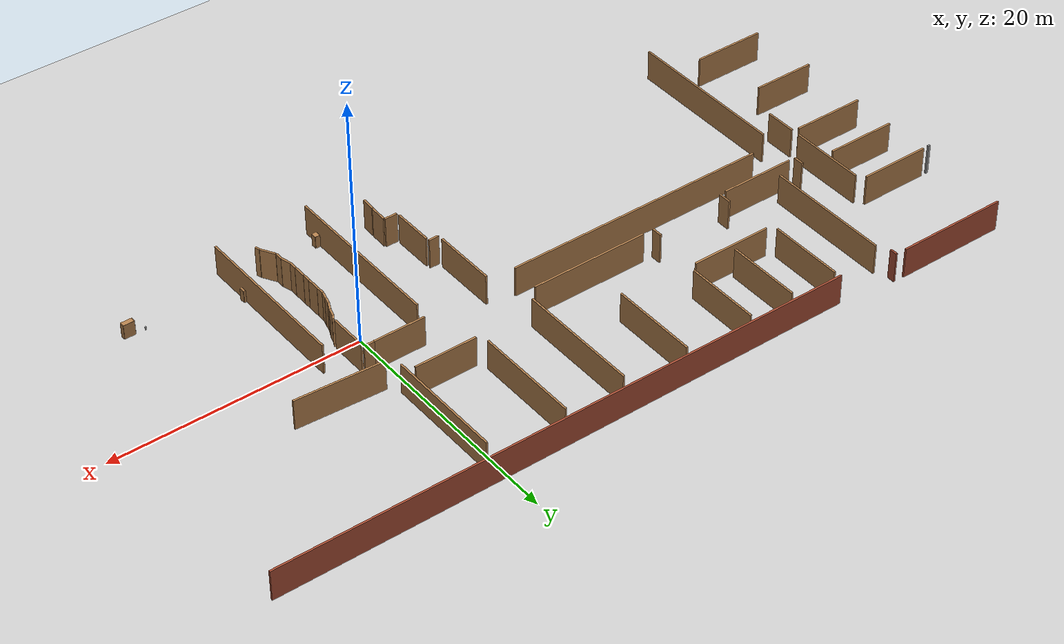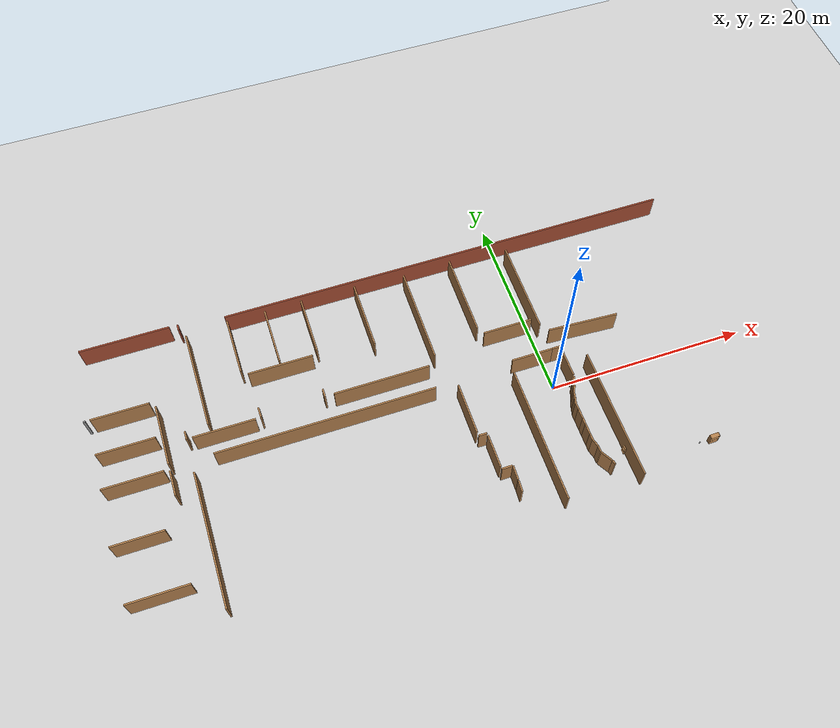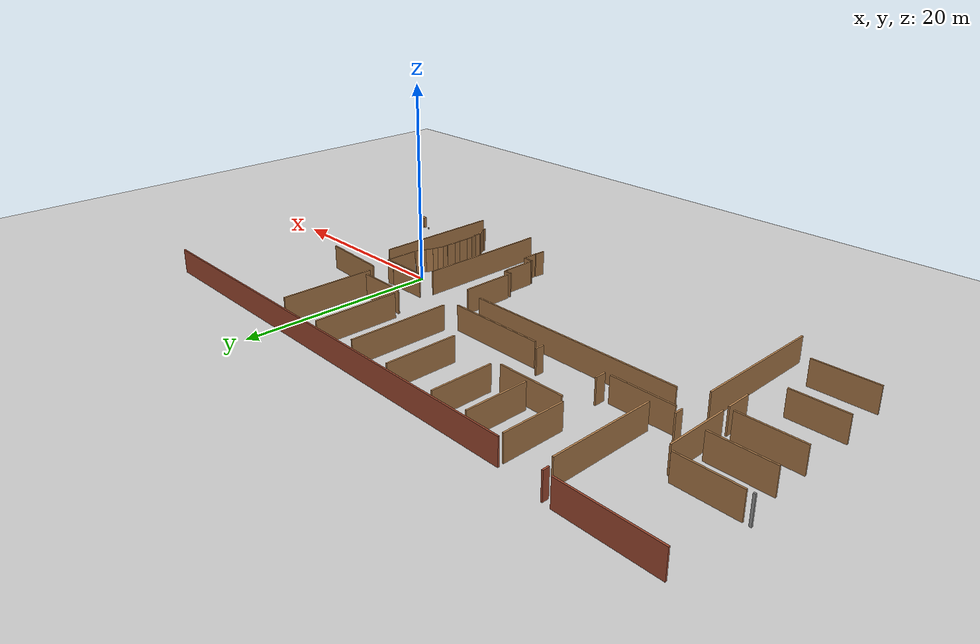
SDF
<sdf version="1.6">
 <world name="default">
  <model name="ground_plane">
   <static>1</static>
   <link name="link">
    <collision name="collision">
     <geometry><plane><normal>0 0 1</normal><size>100 100</size></plane></geometry>
     <surface><friction><ode><mu>100</mu><mu2>50</mu2></ode></friction></surface>
    </collision>
    <visual name="visual">
     <cast_shadows>0</cast_shadows>
     <geometry><plane><normal>0 0 1</normal><size>100 100</size></plane></geometry>
     <material>
      <script><uri>file://media/materials/scripts/gazebo.material</uri><name>Gazebo/Grey</name></script>
     </material>
    </visual>
   </link>
  </model>
  <model name="floorPlan">
   <pose>6.7155 -5.3556 0 0 -0 0</pose>
   <link name="Wall_101">
    <collision name="Wall_101_Collision">
     <geometry><box><size>8.95 0.15 2.5</size></box></geometry>
     <pose>0 0 1.25 0 -0 0</pose>
    </collision>
    <visual name="Wall_101_Visual">
     <pose>0 0 1.25 0 -0 0</pose>
     <geometry><box><size>8.95 0.15 2.5</size></box></geometry>
     <material>
      <script><uri>file://media/materials/scripts/gazebo.material</uri><name>Gazebo/Bricks</name></script>
      <ambient>1 1 1 1</ambient>
     </material>
     <meta><layer>0</layer></meta>
    </visual>
    <pose>-45.3755 22.7356 0 0 -0 0</pose>
   </link>
   <link name="Wall_102">
    <collision name="Wall_102_Collision">
     <geometry><box><size>0.62 0.15 2.5</size></box></geometry>
     <pose>0 0 1.25 0 -0 0</pose>
    </collision>
    <visual name="Wall_102_Visual">
     <pose>0 0 1.25 0 -0 0</pose>
     <geometry><box><size>0.62 0.15 2.5</size></box></geometry>
     <material>
      <script><uri>file://media/materials/scripts/gazebo.material</uri><name>Gazebo/Bricks</name></script>
      <ambient>1 1 1 1</ambient>
     </material>
     <meta><layer>0</layer></meta>
    </visual>
    <pose>-40.0755 22.4356 0 0 0 -1.5708</pose>
   </link>
   <link name="Wall_103">
    <collision name="Wall_103_Collision">
     <geometry><box><size>46.86 0.15 2.5</size></box></geometry>
     <pose>0 0 1.25 0 -0 0</pose>
    </collision>
    <visual name="Wall_103_Visual">
     <pose>0 0 1.25 0 -0 0</pose>
     <geometry><box><size>46.86 0.15 2.5</size></box></geometry>
     <material>
      <script><uri>file://media/materials/scripts/gazebo.material</uri><name>Gazebo/Bricks</name></script>
      <ambient>1 1 1 1</ambient>
     </material>
     <meta><layer>0</layer></meta>
    </visual>
    <pose>-12.0255 22.1356 0 0 -0 0</pose>
   </link>
   <link name="Wall_161">
    <collision name="Wall_161_Collision">
     <geometry><box><size>4.17 0.15 2.5</size></box></geometry>
     <pose>0 0 1.25 0 -0 0</pose>
    </collision>
    <visual name="Wall_161_Visual">
     <pose>0 0 1.25 0 -0 0</pose>
     <geometry><box><size>4.17 0.15 2.5</size></box></geometry>
     <material>
      <script><uri>file://media/materials/scripts/gazebo.material</uri><name>Gazebo/Wood</name></script>
      <ambient>1 1 1 1</ambient>
     </material>
     <meta><layer>0</layer></meta>
    </visual>
    <pose>-7.97942 8.30014 0 0 -0 3.14159</pose>
   </link>
   <link name="Wall_162">
    <collision name="Wall_162_Collision">
     <geometry><box><size>13.74 0.15 2.5</size></box></geometry>
     <pose>0 0 1.25 0 -0 0</pose>
    </collision>
    <visual name="Wall_162_Visual">
     <pose>0 0 1.25 0 -0 0</pose>
     <geometry><box><size>13.74 0.15 2.5</size></box></geometry>
     <material>
      <script><uri>file://media/materials/scripts/gazebo.material</uri><name>Gazebo/Wood</name></script>
      <ambient>1 1 1 1</ambient>
     </material>
     <meta><layer>0</layer></meta>
    </visual>
    <pose>-10.4044 0.125141 0 0 0 -1.5708</pose>
   </link>
   <link name="Wall_165">
    <collision name="Wall_165_Collision">
     <geometry><box><size>0.42 0.15 2.5</size></box></geometry>
     <pose>0 0 1.25 0 -0 0</pose>
    </collision>
    <visual name="Wall_165_Visual">
     <pose>0 0 1.25 0 -0 0</pose>
     <geometry><box><size>0.42 0.15 2.5</size></box></geometry>
     <material>
      <script><uri>file://media/materials/scripts/gazebo.material</uri><name>Gazebo/Wood</name></script>
      <ambient>1 1 1 1</ambient>
     </material>
     <meta><layer>0</layer></meta>
    </visual>
    <pose>-5.09971 -4.78082 0 0 -0 1.8326</pose>
   </link>
   <link name="Wall_166">
    <collision name="Wall_166_Collision">
     <geometry><box><size>1.25 0.15 2.5</size></box></geometry>
     <pose>0 0 1.25 0 -0 0</pose>
    </collision>
    <visual name="Wall_166_Visual">
     <pose>0 0 1.25 0 -0 0</pose>
     <geometry><box><size>1.25 0.15 2.5</size></box></geometry>
     <material>
      <script><uri>file://media/materials/scripts/gazebo.material</uri><name>Gazebo/Wood</name></script>
      <ambient>1 1 1 1</ambient>
     </material>
     <meta><layer>0</layer></meta>
    </visual>
    <pose>-5.4825 -4.02722 0 0 -0 2.0944</pose>
   </link>
   <link name="Wall_167">
    <collision name="Wall_167_Collision">
     <geometry><box><size>0.62 0.15 2.5</size></box></geometry>
     <pose>0 0 1.25 0 -0 0</pose>
    </collision>
    <visual name="Wall_167_Visual">
     <pose>0 0 1.25 0 -0 0</pose>
     <geometry><box><size>0.62 0.15 2.5</size></box></geometry>
     <material>
      <script><uri>file://media/materials/scripts/gazebo.material</uri><name>Gazebo/Wood</name></script>
      <ambient>1 1 1 1</ambient>
     </material>
     <meta><layer>0</layer></meta>
    </visual>
    <pose>-5.82 -3.14265 0 0 -0 1.5708</pose>
   </link>
   <link name="Wall_168">
    <collision name="Wall_168_Collision">
     <geometry><box><size>0.83 0.15 2.5</size></box></geometry>
     <pose>0 0 1.25 0 -0 0</pose>
    </collision>
    <visual name="Wall_168_Visual">
     <pose>0 0 1.25 0 -0 0</pose>
     <geometry><box><size>0.83 0.15 2.5</size></box></geometry>
     <material>
      <script><uri>file://media/materials/scripts/gazebo.material</uri><name>Gazebo/Wood</name></script>
      <ambient>1 1 1 1</ambient>
     </material>
     <meta><layer>0</layer></meta>
    </visual>
    <pose>-5.93 -2.43213 0 0 -0 1.8326</pose>
   </link>
   <link name="Wall_169">
    <collision name="Wall_169_Collision">
     <geometry><box><size>0.62 0.15 2.5</size></box></geometry>
     <pose>0 0 1.25 0 -0 0</pose>
    </collision>
    <visual name="Wall_169_Visual">
     <pose>0 0 1.25 0 -0 0</pose>
     <geometry><box><size>0.62 0.15 2.5</size></box></geometry>
     <material>
      <script><uri>file://media/materials/scripts/gazebo.material</uri><name>Gazebo/Wood</name></script>
      <ambient>1 1 1 1</ambient>
     </material>
     <meta><layer>0</layer></meta>
    </visual>
    <pose>-6.04 -1.72161 0 0 -0 1.5708</pose>
   </link>
   <link name="Wall_170">
    <collision name="Wall_170_Collision">
     <geometry><box><size>1.04 0.15 2.5</size></box></geometry>
     <pose>0 0 1.25 0 -0 0</pose>
    </collision>
    <visual name="Wall_170_Visual">
     <pose>0 0 1.25 0 -0 0</pose>
     <geometry><box><size>1.04 0.15 2.5</size></box></geometry>
     <material>
      <script><uri>file://media/materials/scripts/gazebo.material</uri><name>Gazebo/Wood</name></script>
      <ambient>1 1 1 1</ambient>
     </material>
     <meta><layer>0</layer></meta>
    </visual>
    <pose>-6.04 -0.871614 0 0 -0 1.5708</pose>
   </link>
   <link name="Wall_171">
    <collision name="Wall_171_Collision">
     <geometry><box><size>0.62 0.15 2.5</size></box></geometry>
     <pose>0 0 1.25 0 -0 0</pose>
    </collision>
    <visual name="Wall_171_Visual">
     <pose>0 0 1.25 0 -0 0</pose>
     <geometry><box><size>0.62 0.15 2.5</size></box></geometry>
     <material>
      <script><uri>file://media/materials/scripts/gazebo.material</uri><name>Gazebo/Wood</name></script>
      <ambient>1 1 1 1</ambient>
     </material>
     <meta><layer>0</layer></meta>
    </visual>
    <pose>-6.04 -0.021614 0 0 -0 1.5708</pose>
   </link>
   <link name="Wall_172">
    <collision name="Wall_172_Collision">
     <geometry><box><size>1.04 0.15 2.5</size></box></geometry>
     <pose>0 0 1.25 0 -0 0</pose>
    </collision>
    <visual name="Wall_172_Visual">
     <pose>0 0 1.25 0 -0 0</pose>
     <geometry><box><size>1.04 0.15 2.5</size></box></geometry>
     <material>
      <script><uri>file://media/materials/scripts/gazebo.material</uri><name>Gazebo/Wood</name></script>
      <ambient>1 1 1 1</ambient>
     </material>
     <meta><layer>0</layer></meta>
    </visual>
    <pose>-6.04 0.828386 0 0 -0 1.5708</pose>
   </link>
   <link name="Wall_173">
    <collision name="Wall_173_Collision">
     <geometry><box><size>0.62 0.15 2.5</size></box></geometry>
     <pose>0 0 1.25 0 -0 0</pose>
    </collision>
    <visual name="Wall_173_Visual">
     <pose>0 0 1.25 0 -0 0</pose>
     <geometry><box><size>0.62 0.15 2.5</size></box></geometry>
     <material>
      <script><uri>file://media/materials/scripts/gazebo.material</uri><name>Gazebo/Wood</name></script>
      <ambient>1 1 1 1</ambient>
     </material>
     <meta><layer>0</layer></meta>
    </visual>
    <pose>-6.04 1.67839 0 0 -0 1.5708</pose>
   </link>
   <link name="Wall_174">
    <collision name="Wall_174_Collision">
     <geometry><box><size>0.62 0.15 2.5</size></box></geometry>
     <pose>0 0 1.25 0 -0 0</pose>
    </collision>
    <visual name="Wall_174_Visual">
     <pose>0 0 1.25 0 -0 0</pose>
     <geometry><box><size>0.62 0.15 2.5</size></box></geometry>
     <material>
      <script><uri>file://media/materials/scripts/gazebo.material</uri><name>Gazebo/Wood</name></script>
      <ambient>1 1 1 1</ambient>
     </material>
     <meta><layer>0</layer></meta>
    </visual>
    <pose>-5.96235 2.26816 0 0 -0 1.309</pose>
   </link>
   <link name="Wall_175">
    <collision name="Wall_175_Collision">
     <geometry><box><size>0.57 0.15 2.5</size></box></geometry>
     <pose>0 0 1.25 0 -0 0</pose>
    </collision>
    <visual name="Wall_175_Visual">
     <pose>0 0 1.25 0 -0 0</pose>
     <geometry><box><size>0.57 0.15 2.5</size></box></geometry>
     <material>
      <script><uri>file://media/materials/scripts/gazebo.material</uri><name>Gazebo/Wood</name></script>
      <ambient>1 1 1 1</ambient>
     </material>
     <meta><layer>0</layer></meta>
    </visual>
    <pose>-5.82391 2.82035 0 0 -0 1.34312</pose>
   </link>
   <link name="Wall_176">
    <collision name="Wall_176_Collision">
     <geometry><box><size>0.73 0.15 2.5</size></box></geometry>
     <pose>0 0 1.25 0 -0 0</pose>
    </collision>
    <visual name="Wall_176_Visual">
     <pose>0 0 1.25 0 -0 0</pose>
     <geometry><box><size>0.73 0.15 2.5</size></box></geometry>
     <material>
      <script><uri>file://media/materials/scripts/gazebo.material</uri><name>Gazebo/Wood</name></script>
      <ambient>1 1 1 1</ambient>
     </material>
     <meta><layer>0</layer></meta>
    </visual>
    <pose>-5.60659 3.41318 0 0 -0 1.12842</pose>
   </link>
   <link name="Wall_177">
    <collision name="Wall_177_Collision">
     <geometry><box><size>0.7 0.15 2.5</size></box></geometry>
     <pose>0 0 1.25 0 -0 0</pose>
    </collision>
    <visual name="Wall_177_Visual">
     <pose>0 0 1.25 0 -0 0</pose>
     <geometry><box><size>0.7 0.15 2.5</size></box></geometry>
     <material>
      <script><uri>file://media/materials/scripts/gazebo.material</uri><name>Gazebo/Wood</name></script>
      <ambient>1 1 1 1</ambient>
     </material>
     <meta><layer>0</layer></meta>
    </visual>
    <pose>-5.34572 4.07405 0 0 -0 1.26492</pose>
   </link>
   <link name="Wall_178">
    <collision name="Wall_178_Collision">
     <geometry><box><size>0.42 0.15 2.5</size></box></geometry>
     <pose>0 0 1.25 0 -0 0</pose>
    </collision>
    <visual name="Wall_178_Visual">
     <pose>0 0 1.25 0 -0 0</pose>
     <geometry><box><size>0.42 0.15 2.5</size></box></geometry>
     <material>
      <script><uri>file://media/materials/scripts/gazebo.material</uri><name>Gazebo/Wood</name></script>
      <ambient>1 1 1 1</ambient>
     </material>
     <meta><layer>0</layer></meta>
    </visual>
    <pose>-5.15387 4.55604 0 0 -0 1.0472</pose>
   </link>
   <link name="Wall_179">
    <collision name="Wall_179_Collision">
     <geometry><box><size>3.12 0.15 2.5</size></box></geometry>
     <pose>0 0 1.25 0 -0 0</pose>
    </collision>
    <visual name="Wall_179_Visual">
     <pose>0 0 1.25 0 -0 0</pose>
     <geometry><box><size>3.12 0.15 2.5</size></box></geometry>
     <material>
      <script><uri>file://media/materials/scripts/gazebo.material</uri><name>Gazebo/Wood</name></script>
      <ambient>1 1 1 1</ambient>
     </material>
     <meta><layer>0</layer></meta>
    </visual>
    <pose>-5.06637 6.5076 0 0 -0 1.5708</pose>
   </link>
   <link name="Wall_180">
    <collision name="Wall_180_Collision">
     <geometry><box><size>0.83 0.15 2.5</size></box></geometry>
     <pose>0 0 1.25 0 -0 0</pose>
    </collision>
    <visual name="Wall_180_Visual">
     <pose>0 0 1.25 0 -0 0</pose>
     <geometry><box><size>0.83 0.15 2.5</size></box></geometry>
     <material>
      <script><uri>file://media/materials/scripts/gazebo.material</uri><name>Gazebo/Wood</name></script>
      <ambient>1 1 1 1</ambient>
     </material>
     <meta><layer>0</layer></meta>
    </visual>
    <pose>-5.49137 8.3076 0 0 -0 3.14159</pose>
   </link>
   <link name="Wall_184">
    <collision name="Wall_184_Collision">
     <geometry><box><size>13.33 0.15 2.5</size></box></geometry>
     <pose>0 0 1.25 0 -0 0</pose>
    </collision>
    <visual name="Wall_184_Visual">
     <pose>0 0 1.25 0 -0 0</pose>
     <geometry><box><size>13.33 0.15 2.5</size></box></geometry>
     <material>
      <script><uri>file://media/materials/scripts/gazebo.material</uri><name>Gazebo/Wood</name></script>
      <ambient>1 1 1 1</ambient>
     </material>
     <meta><layer>0</layer></meta>
    </visual>
    <pose>-41.7957 -0.087903 0 0 -0 1.5708</pose>
   </link>
   <link name="Wall_185">
    <collision name="Wall_185_Collision">
     <geometry><box><size>21.66 0.15 2.5</size></box></geometry>
     <pose>0 0 1.25 0 -0 0</pose>
    </collision>
    <visual name="Wall_185_Visual">
     <pose>0 0 1.25 0 -0 0</pose>
     <geometry><box><size>21.66 0.15 2.5</size></box></geometry>
     <material>
      <script><uri>file://media/materials/scripts/gazebo.material</uri><name>Gazebo/Wood</name></script>
      <ambient>1 1 1 1</ambient>
     </material>
     <meta><layer>0</layer></meta>
    </visual>
    <pose>-28.8707 7.8371 0 0 -0 0</pose>
   </link>
   <link name="Wall_186">
    <collision name="Wall_186_Collision">
     <geometry><box><size>5.21 0.15 2.5</size></box></geometry>
     <pose>0 0 1.25 0 -0 0</pose>
    </collision>
    <visual name="Wall_186_Visual">
     <pose>0 0 1.25 0 -0 0</pose>
     <geometry><box><size>5.21 0.15 2.5</size></box></geometry>
     <material>
      <script><uri>file://media/materials/scripts/gazebo.material</uri><name>Gazebo/Wood</name></script>
      <ambient>1 1 1 1</ambient>
     </material>
     <meta><layer>0</layer></meta>
    </visual>
    <pose>-15.9457 4.7871 0 0 0 -1.5708</pose>
   </link>
   <link name="Wall_187">
    <collision name="Wall_187_Collision">
     <geometry><box><size>0.83 0.15 2.5</size></box></geometry>
     <pose>0 0 1.25 0 -0 0</pose>
    </collision>
    <visual name="Wall_187_Visual">
     <pose>0 0 1.25 0 -0 0</pose>
     <geometry><box><size>0.83 0.15 2.5</size></box></geometry>
     <material>
      <script><uri>file://media/materials/scripts/gazebo.material</uri><name>Gazebo/Wood</name></script>
      <ambient>1 1 1 1</ambient>
     </material>
     <meta><layer>0</layer></meta>
    </visual>
    <pose>-15.5207 1.7371 0 0 -0 0</pose>
   </link>
   <link name="Wall_188">
    <collision name="Wall_188_Collision">
     <geometry><box><size>3.33 0.15 2.5</size></box></geometry>
     <pose>0 0 1.25 0 -0 0</pose>
    </collision>
    <visual name="Wall_188_Visual">
     <pose>0 0 1.25 0 -0 0</pose>
     <geometry><box><size>3.33 0.15 2.5</size></box></geometry>
     <material>
      <script><uri>file://media/materials/scripts/gazebo.material</uri><name>Gazebo/Wood</name></script>
      <ambient>1 1 1 1</ambient>
     </material>
     <meta><layer>0</layer></meta>
    </visual>
    <pose>-15.0957 -0.187903 0 0 0 -1.5708</pose>
   </link>
   <link name="Wall_189">
    <collision name="Wall_189_Collision">
     <geometry><box><size>1.04 0.15 2.5</size></box></geometry>
     <pose>0 0 1.25 0 -0 0</pose>
    </collision>
    <visual name="Wall_189_Visual">
     <pose>0 0 1.25 0 -0 0</pose>
     <geometry><box><size>1.04 0.15 2.5</size></box></geometry>
     <material>
      <script><uri>file://media/materials/scripts/gazebo.material</uri><name>Gazebo/Wood</name></script>
      <ambient>1 1 1 1</ambient>
     </material>
     <meta><layer>0</layer></meta>
    </visual>
    <pose>-14.5457 -2.1129 0 0 -0 0</pose>
   </link>
   <link name="Wall_190">
    <collision name="Wall_190_Collision">
     <geometry><box><size>1.39 0.15 2.5</size></box></geometry>
     <pose>0 0 1.25 0 -0 0</pose>
    </collision>
    <visual name="Wall_190_Visual">
     <pose>0 0 1.25 0 -0 0</pose>
     <geometry><box><size>1.39 0.15 2.5</size></box></geometry>
     <material>
      <script><uri>file://media/materials/scripts/gazebo.material</uri><name>Gazebo/Wood</name></script>
      <ambient>1 1 1 1</ambient>
     </material>
     <meta><layer>0</layer></meta>
    </visual>
    <pose>-14.0185 -2.8716 0 0 0 -1.60087</pose>
   </link>
   <link name="Wall_191">
    <collision name="Wall_191_Collision">
     <geometry><box><size>1.11 0.15 2.5</size></box></geometry>
     <pose>0 0 1.25 0 -0 0</pose>
    </collision>
    <visual name="Wall_191_Visual">
     <pose>0 0 1.25 0 -0 0</pose>
     <geometry><box><size>1.11 0.15 2.5</size></box></geometry>
     <material>
      <script><uri>file://media/materials/scripts/gazebo.material</uri><name>Gazebo/Wood</name></script>
      <ambient>1 1 1 1</ambient>
     </material>
     <meta><layer>0</layer></meta>
    </visual>
    <pose>-14.0762 -4.2216 0 0 0 -1.62955</pose>
   </link>
   <link name="Wall_198">
    <collision name="Wall_198_Collision">
     <geometry><box><size>5 0.15 2.5</size></box></geometry>
     <pose>0 0 1.25 0 -0 0</pose>
    </collision>
    <visual name="Wall_198_Visual">
     <pose>0 0 1.25 0 -0 0</pose>
     <geometry><box><size>5 0.15 2.5</size></box></geometry>
     <material>
      <script><uri>file://media/materials/scripts/gazebo.material</uri><name>Gazebo/Wood</name></script>
      <ambient>1 1 1 1</ambient>
     </material>
     <meta><layer>0</layer></meta>
    </visual>
    <pose>-47.8468 1.90014 0 0 -0 0</pose>
   </link>
   <link name="Wall_200">
    <collision name="Wall_200_Collision">
     <geometry><box><size>2.5 0.15 2.5</size></box></geometry>
     <pose>0 0 1.25 0 -0 0</pose>
    </collision>
    <visual name="Wall_200_Visual">
     <pose>0 0 1.25 0 -0 0</pose>
     <geometry><box><size>2.5 0.15 2.5</size></box></geometry>
     <material>
      <script><uri>file://media/materials/scripts/gazebo.material</uri><name>Gazebo/Wood</name></script>
      <ambient>1 1 1 1</ambient>
     </material>
     <meta><layer>0</layer></meta>
    </visual>
    <pose>-43.8501 6.14253 0 0 -0 1.5708</pose>
   </link>
   <link name="Wall_201">
    <collision name="Wall_201_Collision">
     <geometry><box><size>5.83 0.15 2.5</size></box></geometry>
     <pose>0 0 1.25 0 -0 0</pose>
    </collision>
    <visual name="Wall_201_Visual">
     <pose>0 0 1.25 0 -0 0</pose>
     <geometry><box><size>5.83 0.15 2.5</size></box></geometry>
     <material>
      <script><uri>file://media/materials/scripts/gazebo.material</uri><name>Gazebo/Wood</name></script>
      <ambient>1 1 1 1</ambient>
     </material>
     <meta><layer>0</layer></meta>
    </visual>
    <pose>-47.2751 7.56753 0 0 -0 3.14159</pose>
   </link>
   <link name="Wall_204">
    <collision name="Wall_204_Collision">
     <geometry><box><size>6.25 0.15 2.5</size></box></geometry>
     <pose>0 0 1.25 0 -0 0</pose>
    </collision>
    <visual name="Wall_204_Visual">
     <pose>0 0 1.25 0 -0 0</pose>
     <geometry><box><size>6.25 0.15 2.5</size></box></geometry>
     <material>
      <script><uri>file://media/materials/scripts/gazebo.material</uri><name>Gazebo/Wood</name></script>
      <ambient>1 1 1 1</ambient>
     </material>
     <meta><layer>0</layer></meta>
    </visual>
    <pose>-43.8501 11.2425 0 0 -0 1.5708</pose>
   </link>
   <link name="Wall_205">
    <collision name="Wall_205_Collision">
     <geometry><box><size>5.62 0.15 2.5</size></box></geometry>
     <pose>0 0 1.25 0 -0 0</pose>
    </collision>
    <visual name="Wall_205_Visual">
     <pose>0 0 1.25 0 -0 0</pose>
     <geometry><box><size>5.62 0.15 2.5</size></box></geometry>
     <material>
      <script><uri>file://media/materials/scripts/gazebo.material</uri><name>Gazebo/Wood</name></script>
      <ambient>1 1 1 1</ambient>
     </material>
     <meta><layer>0</layer></meta>
    </visual>
    <pose>-47.1501 14.9175 0 0 -0 3.14159</pose>
   </link>
   <link name="Wall_207">
    <collision name="Wall_207_Collision">
     <geometry><box><size>0.21 0.15 2.5</size></box></geometry>
     <pose>0 0 1.25 0 -0 0</pose>
    </collision>
    <visual name="Wall_207_Visual">
     <pose>0 0 1.25 0 -0 0</pose>
     <geometry><box><size>0.21 0.15 2.5</size></box></geometry>
     <material>
      <script><uri>file://media/materials/scripts/gazebo.material</uri><name>Gazebo/Grey</name></script>
      <ambient>1 1 1 1</ambient>
     </material>
     <meta><layer>0</layer></meta>
    </visual>
    <pose>-50.5001 14.9175 0 0 -0 3.14159</pose>
   </link>
   <link name="Wall_209">
    <collision name="Wall_209_Collision">
     <geometry><box><size>6.04 0.15 2.5</size></box></geometry>
     <pose>0 0 1.25 0 -0 0</pose>
    </collision>
    <visual name="Wall_209_Visual">
     <pose>0 0 1.25 0 -0 0</pose>
     <geometry><box><size>6.04 0.15 2.5</size></box></geometry>
     <material>
      <script><uri>file://media/materials/scripts/gazebo.material</uri><name>Gazebo/Wood</name></script>
      <ambient>1 1 1 1</ambient>
     </material>
     <meta><layer>0</layer></meta>
    </visual>
    <pose>-38.2131 10.0741 0 0 -0 0</pose>
   </link>
   <link name="Wall_210">
    <collision name="Wall_210_Collision">
     <geometry><box><size>1.04 0.15 2.5</size></box></geometry>
     <pose>0 0 1.25 0 -0 0</pose>
    </collision>
    <visual name="Wall_210_Visual">
     <pose>0 0 1.25 0 -0 0</pose>
     <geometry><box><size>1.04 0.15 2.5</size></box></geometry>
     <material>
      <script><uri>file://media/materials/scripts/gazebo.material</uri><name>Gazebo/Wood</name></script>
      <ambient>1 1 1 1</ambient>
     </material>
     <meta><layer>0</layer></meta>
    </visual>
    <pose>-34.6631 10.6241 0 0 -0 1.5708</pose>
   </link>
   <link name="Wall_212">
    <collision name="Wall_212_Collision">
     <geometry><box><size>0.83 0.15 2.5</size></box></geometry>
     <pose>0 0 1.25 0 -0 0</pose>
    </collision>
    <visual name="Wall_212_Visual">
     <pose>0 0 1.25 0 -0 0</pose>
     <geometry><box><size>0.83 0.15 2.5</size></box></geometry>
     <material>
      <script><uri>file://media/materials/scripts/gazebo.material</uri><name>Gazebo/Wood</name></script>
      <ambient>1 1 1 1</ambient>
     </material>
     <meta><layer>0</layer></meta>
    </visual>
    <pose>-41.7631 10.4991 0 0 -0 1.5708</pose>
   </link>
   <link name="Wall_214">
    <collision name="Wall_214_Collision">
     <geometry><box><size>10.2 0.15 2.5</size></box></geometry>
     <pose>0 0 1.25 0 -0 0</pose>
    </collision>
    <visual name="Wall_214_Visual">
     <pose>0 0 1.25 0 -0 0</pose>
     <geometry><box><size>10.2 0.15 2.5</size></box></geometry>
     <material>
      <script><uri>file://media/materials/scripts/gazebo.material</uri><name>Gazebo/Wood</name></script>
      <ambient>1 1 1 1</ambient>
     </material>
     <meta><layer>0</layer></meta>
    </visual>
    <pose>-39.537 16.0936 0 0 0 -1.5708</pose>
   </link>
   <link name="Wall_216">
    <collision name="Wall_216_Collision">
     <geometry><box><size>6.04 0.15 2.5</size></box></geometry>
     <pose>0 0 1.25 0 -0 0</pose>
    </collision>
    <visual name="Wall_216_Visual">
     <pose>0 0 1.25 0 -0 0</pose>
     <geometry><box><size>6.04 0.15 2.5</size></box></geometry>
     <material>
      <script><uri>file://media/materials/scripts/gazebo.material</uri><name>Gazebo/Wood</name></script>
      <ambient>1 1 1 1</ambient>
     </material>
     <meta><layer>0</layer></meta>
    </visual>
    <pose>-35.3283 18.5936 0 0 0 -1.5708</pose>
   </link>
   <link name="Wall_217">
    <collision name="Wall_217_Collision">
     <geometry><box><size>6.46 0.15 2.5</size></box></geometry>
     <pose>0 0 1.25 0 -0 0</pose>
    </collision>
    <visual name="Wall_217_Visual">
     <pose>0 0 1.25 0 -0 0</pose>
     <geometry><box><size>6.46 0.15 2.5</size></box></geometry>
     <material>
      <script><uri>file://media/materials/scripts/gazebo.material</uri><name>Gazebo/Wood</name></script>
      <ambient>1 1 1 1</ambient>
     </material>
     <meta><layer>0</layer></meta>
    </visual>
    <pose>-31.5283 15.0436 0 0 -0 0</pose>
   </link>
   <link name="Wall_218">
    <collision name="Wall_218_Collision">
     <geometry><box><size>6.04 0.15 2.5</size></box></geometry>
     <pose>0 0 1.25 0 -0 0</pose>
    </collision>
    <visual name="Wall_218_Visual">
     <pose>0 0 1.25 0 -0 0</pose>
     <geometry><box><size>6.04 0.15 2.5</size></box></geometry>
     <material>
      <script><uri>file://media/materials/scripts/gazebo.material</uri><name>Gazebo/Wood</name></script>
      <ambient>1 1 1 1</ambient>
     </material>
     <meta><layer>0</layer></meta>
    </visual>
    <pose>-27.7283 18.5936 0 0 -0 1.5708</pose>
   </link>
   <link name="Wall_220">
    <collision name="Wall_220_Collision">
     <geometry><box><size>0.83 0.15 2.5</size></box></geometry>
     <pose>0 0 1.25 0 -0 0</pose>
    </collision>
    <visual name="Wall_220_Visual">
     <pose>0 0 1.25 0 -0 0</pose>
     <geometry><box><size>0.83 0.15 2.5</size></box></geometry>
     <material>
      <script><uri>file://media/materials/scripts/gazebo.material</uri><name>Gazebo/Wood</name></script>
      <ambient>1 1 1 1</ambient>
     </material>
     <meta><layer>0</layer></meta>
    </visual>
    <pose>-28.3718 10.7273 0 0 0 -1.5708</pose>
   </link>
   <link name="Wall_221">
    <collision name="Wall_221_Collision">
     <geometry><box><size>9.58 0.15 2.5</size></box></geometry>
     <pose>0 0 1.25 0 -0 0</pose>
    </collision>
    <visual name="Wall_221_Visual">
     <pose>0 0 1.25 0 -0 0</pose>
     <geometry><box><size>9.58 0.15 2.5</size></box></geometry>
     <material>
      <script><uri>file://media/materials/scripts/gazebo.material</uri><name>Gazebo/Wood</name></script>
      <ambient>1 1 1 1</ambient>
     </material>
     <meta><layer>0</layer></meta>
    </visual>
    <pose>-22.6968 10.3023 0 0 -0 0</pose>
   </link>
   <link name="Wall_222">
    <collision name="Wall_222_Collision">
     <geometry><box><size>10 0.15 2.5</size></box></geometry>
     <pose>0 0 1.25 0 -0 0</pose>
    </collision>
    <visual name="Wall_222_Visual">
     <pose>0 0 1.25 0 -0 0</pose>
     <geometry><box><size>10 0.15 2.5</size></box></geometry>
     <material>
      <script><uri>file://media/materials/scripts/gazebo.material</uri><name>Gazebo/Wood</name></script>
      <ambient>1 1 1 1</ambient>
     </material>
     <meta><layer>0</layer></meta>
    </visual>
    <pose>-17.0218 16.2273 0 0 -0 1.5708</pose>
   </link>
   <link name="Wall_224">
    <collision name="Wall_224_Collision">
     <geometry><box><size>7.08 0.15 2.5</size></box></geometry>
     <pose>0 0 1.25 0 -0 0</pose>
    </collision>
    <visual name="Wall_224_Visual">
     <pose>0 0 1.25 0 -0 0</pose>
     <geometry><box><size>7.08 0.15 2.5</size></box></geometry>
     <material>
      <script><uri>file://media/materials/scripts/gazebo.material</uri><name>Gazebo/Wood</name></script>
      <ambient>1 1 1 1</ambient>
     </material>
     <meta><layer>0</layer></meta>
    </visual>
    <pose>-22.1805 18.0034 0 0 0 -1.5708</pose>
   </link>
   <link name="Wall_226">
    <collision name="Wall_226_Collision">
     <geometry><box><size>8.54 0.15 2.5</size></box></geometry>
     <pose>0 0 1.25 0 -0 0</pose>
    </collision>
    <visual name="Wall_226_Visual">
     <pose>0 0 1.25 0 -0 0</pose>
     <geometry><box><size>8.54 0.15 2.5</size></box></geometry>
     <material>
      <script><uri>file://media/materials/scripts/gazebo.material</uri><name>Gazebo/Wood</name></script>
      <ambient>1 1 1 1</ambient>
     </material>
     <meta><layer>0</layer></meta>
    </visual>
    <pose>-12.024 17.1632 0 0 0 -1.5708</pose>
   </link>
   <link name="Wall_227">
    <collision name="Wall_227_Collision">
     <geometry><box><size>5 0.15 2.5</size></box></geometry>
     <pose>0 0 1.25 0 -0 0</pose>
    </collision>
    <visual name="Wall_227_Visual">
     <pose>0 0 1.25 0 -0 0</pose>
     <geometry><box><size>5 0.15 2.5</size></box></geometry>
     <material>
      <script><uri>file://media/materials/scripts/gazebo.material</uri><name>Gazebo/Wood</name></script>
      <ambient>1 1 1 1</ambient>
     </material>
     <meta><layer>0</layer></meta>
    </visual>
    <pose>-9.09898 12.1132 0 0 -0 0</pose>
   </link>
   <link name="Wall_23">
    <collision name="Wall_23_Collision">
     <geometry><box><size>13.33 0.15 2.5</size></box></geometry>
     <pose>0 0 1.25 0 -0 0</pose>
    </collision>
    <visual name="Wall_23_Visual">
     <pose>0 0 1.25 0 -0 0</pose>
     <geometry><box><size>13.33 0.15 2.5</size></box></geometry>
     <material>
      <script><uri>file://media/materials/scripts/gazebo.material</uri><name>Gazebo/Wood</name></script>
      <ambient>1 1 1 1</ambient>
     </material>
     <meta><layer>0</layer></meta>
    </visual>
    <pose>-2.91083 -0.082161 0 0 0 -1.56638</pose>
   </link>
   <link name="Wall_250">
    <collision name="Wall_250_Collision">
     <geometry><box><size>5.83 0.15 2.5</size></box></geometry>
     <pose>0 0 1.25 0 -0 0</pose>
    </collision>
    <visual name="Wall_250_Visual">
     <pose>0 0 1.25 0 -0 0</pose>
     <geometry><box><size>5.83 0.15 2.5</size></box></geometry>
     <material>
      <script><uri>file://media/materials/scripts/gazebo.material</uri><name>Gazebo/Wood</name></script>
      <ambient>1 1 1 1</ambient>
     </material>
     <meta><layer>0</layer></meta>
    </visual>
    <pose>-47.1009 -3.6289 0 0 -0 0</pose>
   </link>
   <link name="Wall_261">
    <collision name="Wall_261_Collision">
     <geometry><box><size>5.62 0.15 2.5</size></box></geometry>
     <pose>0 0 1.25 0 -0 0</pose>
    </collision>
    <visual name="Wall_261_Visual">
     <pose>0 0 1.25 0 -0 0</pose>
     <geometry><box><size>5.62 0.15 2.5</size></box></geometry>
     <material>
      <script><uri>file://media/materials/scripts/gazebo.material</uri><name>Gazebo/Wood</name></script>
      <ambient>1 1 1 1</ambient>
     </material>
     <meta><layer>0</layer></meta>
    </visual>
    <pose>-47.2608 11.1677 0 0 -0 0</pose>
   </link>
   <link name="Wall_263">
    <collision name="Wall_263_Collision">
     <geometry><box><size>6.04 0.15 2.5</size></box></geometry>
     <pose>0 0 1.25 0 -0 0</pose>
    </collision>
    <visual name="Wall_263_Visual">
     <pose>0 0 1.25 0 -0 0</pose>
     <geometry><box><size>6.04 0.15 2.5</size></box></geometry>
     <material>
      <script><uri>file://media/materials/scripts/gazebo.material</uri><name>Gazebo/Wood</name></script>
      <ambient>1 1 1 1</ambient>
     </material>
     <meta><layer>0</layer></meta>
    </visual>
    <pose>-31.4967 18.5315 0 0 0 -1.5708</pose>
   </link>
   <link name="Wall_33">
    <collision name="Wall_33_Collision">
     <geometry><box><size>7.1 0.15 2.5</size></box></geometry>
     <pose>0 0 1.25 0 -0 0</pose>
    </collision>
    <visual name="Wall_33_Visual">
     <pose>0 0 1.25 0 -0 0</pose>
     <geometry><box><size>7.1 0.15 2.5</size></box></geometry>
     <material>
      <script><uri>file://media/materials/scripts/gazebo.material</uri><name>Gazebo/Wood</name></script>
      <ambient>1 1 1 1</ambient>
     </material>
     <meta><layer>0</layer></meta>
    </visual>
    <pose>-1.83025 10.1992 0 0 0 -0.056901</pose>
   </link>
   <link name="Wall_36">
    <collision name="Wall_36_Collision">
     <geometry><box><size>9.58 0.15 2.5</size></box></geometry>
     <pose>0 0 1.25 0 -0 0</pose>
    </collision>
    <visual name="Wall_36_Visual">
     <pose>0 0 1.25 0 -0 0</pose>
     <geometry><box><size>9.58 0.15 2.5</size></box></geometry>
     <material>
      <script><uri>file://media/materials/scripts/gazebo.material</uri><name>Gazebo/Wood</name></script>
      <ambient>1 1 1 1</ambient>
     </material>
     <meta><layer>0</layer></meta>
    </visual>
    <pose>-6.00935 16.1122 0 0 -0 1.5708</pose>
   </link>
   <static>1</static>
  </model>
  <model name="beer_7">
   <link name="link">
    <pose>0 0 0.115 0 -0 0</pose>
    <inertial>
     <mass>0.39</mass>
     <inertia><ixx>0.00058</ixx><ixy>0</ixy><ixz>0</ixz><iyy>0.00058</iyy><iyz>0</iyz><izz>0.00019</izz></inertia>
    </inertial>
    <collision name="collision">
     <geometry><cylinder><radius>0.055</radius><length>0.23</length></cylinder></geometry>
    </collision>
    <visual name="visual">
     <geometry><cylinder><radius>0.055</radius><length>0.23</length></cylinder></geometry>
     <material>
      <script>
       <uri>model://beer/materials/scripts</uri>
       <uri>model://beer/materials/textures</uri>
       <name>Beer/Diffuse</name>
      </script>
     </material>
    </visual>
   </link>
   <pose>10.9878 -10.023 -2e-06 1e-06 -0 -3.5e-05</pose>
  </model>
  <model name="bookshelf_8">
   <static>1</static>
   <link name="link">
    <inertial><mass>1</mass></inertial>
    <collision name="back">
     <pose>0 0.005 0.6 0 -0 0</pose>
     <geometry><box><size>0.9 0.01 1.2</size></box></geometry>
    </collision>
    <visual name="visual1">
     <pose>0 0.005 0.6 0 -0 0</pose>
     <geometry><box><size>0.9 0.01 1.2</size></box></geometry>
     <material>
      <script><uri>file://media/materials/scripts/gazebo.material</uri><name>Gazebo/Wood</name></script>
     </material>
    </visual>
    <collision name="left_side">
     <pose>0.45 -0.195 0.6 0 -0 0</pose>
     <geometry><box><size>0.02 0.4 1.2</size></box></geometry>
    </collision>
    <visual name="visual2">
     <pose>0.45 -0.195 0.6 0 -0 0</pose>
     <geometry><box><size>0.02 0.4 1.2</size></box></geometry>
     <material>
      <script><uri>file://media/materials/scripts/gazebo.material</uri><name>Gazebo/Wood</name></script>
     </material>
    </visual>
    <collision name="right_side">
     <pose>-0.45 -0.195 0.6 0 -0 0</pose>
     <geometry><box><size>0.02 0.4 1.2</size></box></geometry>
    </collision>
    <visual name="visual3">
     <pose>-0.45 -0.195 0.6 0 -0 0</pose>
     <geometry><box><size>0.02 0.4 1.2</size></box></geometry>
     <material>
      <script><uri>file://media/materials/scripts/gazebo.material</uri><name>Gazebo/Wood</name></script>
     </material>
    </visual>
    <collision name="bottom">
     <pose>0 -0.195 0.03 0 -0 0</pose>
     <geometry><box><size>0.88 0.4 0.06</size></box></geometry>
    </collision>
    <visual name="visual4">
     <pose>0 -0.195 0.03 0 -0 0</pose>
     <geometry><box><size>0.88 0.4 0.06</size></box></geometry>
     <material>
      <script><uri>file://media/materials/scripts/gazebo.material</uri><name>Gazebo/Wood</name></script>
     </material>
    </visual>
    <collision name="top">
     <pose>0 -0.195 1.19 0 -0 0</pose>
     <geometry><box><size>0.88 0.4 0.02</size></box></geometry>
    </collision>
    <visual name="visual5">
     <pose>0 -0.195 1.19 0 -0 0</pose>
     <geometry><box><size>0.88 0.4 0.02</size></box></geometry>
     <material>
      <script><uri>file://media/materials/scripts/gazebo.material</uri><name>Gazebo/Wood</name></script>
     </material>
    </visual>
    <collision name="low_shelf">
     <pose>0 -0.195 0.43 0 -0 0</pose>
     <geometry><box><size>0.88 0.4 0.02</size></box></geometry>
    </collision>
    <visual name="visual6">
     <pose>0 -0.195 0.43 0 -0 0</pose>
     <geometry><box><size>0.88 0.4 0.02</size></box></geometry>
     <material>
      <script><uri>file://media/materials/scripts/gazebo.material</uri><name>Gazebo/Wood</name></script>
     </material>
    </visual>
    <collision name="high_shelf">
     <pose>0 -0.195 0.8 0 -0 0</pose>
     <geometry><box><size>0.88 0.4 0.02</size></box></geometry>
    </collision>
    <visual name="visual7">
     <pose>0 -0.195 0.8 0 -0 0</pose>
     <geometry><box><size>0.88 0.4 0.02</size></box></geometry>
     <material>
      <script><uri>file://media/materials/scripts/gazebo.material</uri><name>Gazebo/Wood</name></script>
     </material>
    </visual>
   </link>
   <pose>12.2179 -9.98903 0 0 -0 0</pose>
  </model>
  <model name="cabinet_4">
   <static>1</static>
   <link name="cabinet_bottom_plate">
    <inertial>
     <pose>0 0 -1 0 -0 0</pose>
     <inertia><ixx>2.05</ixx><ixy>0</ixy><ixz>0</ixz><iyy>2.05</iyy><iyz>0</iyz><izz>2.05</izz></inertia>
     <mass>25</mass>
    </inertial>
    <collision name="cabinet_bottom_plate_geom">
     <pose>0 0 0.01 0 -0 0</pose>
     <geometry><box><size>0.45 0.45 0.02</size></box></geometry>
    </collision>
    <visual name="cabinet_bottom_plate_geom_visual">
     <pose>0 0 0.01 0 -0 0</pose>
     <geometry><box><size>0.45 0.45 0.02</size></box></geometry>
     <material>
      <script><uri>file://media/materials/scripts/gazebo.material</uri><name>Gazebo/Wood</name></script>
     </material>
    </visual>
    <collision name="cabinet_bottom_plate_geom_cabinet_back_plate">
     <pose>0.235 0 0.51 0 -0 0</pose>
     <geometry><box><size>0.02 0.45 1.02</size></box></geometry>
    </collision>
    <visual name="cabinet_bottom_plate_geom_cabinet_back_plate_visual">
     <pose>0.235 0 0.51 0 -0 0</pose>
     <geometry><box><size>0.02 0.45 1.02</size></box></geometry>
     <material>
      <script><uri>file://media/materials/scripts/gazebo.material</uri><name>Gazebo/Wood</name></script>
     </material>
    </visual>
    <collision name="cabinet_bottom_plate_geom_cabinet_left_plate">
     <pose>0 0.235 0.51 0 -0 0</pose>
     <geometry><box><size>0.45 0.02 1.02</size></box></geometry>
    </collision>
    <visual name="cabinet_bottom_plate_geom_cabinet_left_plate_visual">
     <pose>0 0.235 0.51 0 -0 0</pose>
     <geometry><box><size>0.45 0.02 1.02</size></box></geometry>
     <material>
      <script><uri>file://media/materials/scripts/gazebo.material</uri><name>Gazebo/Wood</name></script>
     </material>
    </visual>
    <collision name="cabinet_bottom_plate_geom_cabinet_middle_plate">
     <pose>0 0 0.51 0 -0 0</pose>
     <geometry><box><size>0.45 0.45 0.02</size></box></geometry>
    </collision>
    <visual name="cabinet_bottom_plate_geom_cabinet_middle_plate_visual">
     <pose>0 0 0.51 0 -0 0</pose>
     <geometry><box><size>0.45 0.45 0.02</size></box></geometry>
     <material>
      <script><uri>file://media/materials/scripts/gazebo.material</uri><name>Gazebo/Wood</name></script>
     </material>
    </visual>
    <collision name="cabinet_bottom_plate_geom_cabinet_right_plate">
     <pose>0 -0.235 0.51 0 -0 0</pose>
     <geometry><box><size>0.45 0.02 1.02</size></box></geometry>
    </collision>
    <visual name="cabinet_bottom_plate_geom_cabinet_right_plate_visual">
     <pose>0 -0.235 0.51 0 -0 0</pose>
     <geometry><box><size>0.45 0.02 1.02</size></box></geometry>
     <material>
      <script><uri>file://media/materials/scripts/gazebo.material</uri><name>Gazebo/Wood</name></script>
     </material>
    </visual>
    <collision name="cabinet_bottom_plate_geom_cabinet_top_plate">
     <pose>0 0 1.01 0 -0 0</pose>
     <geometry><box><size>0.45 0.45 0.02</size></box></geometry>
    </collision>
    <visual name="cabinet_bottom_plate_geom_cabinet_top_plate_visual">
     <pose>0 0 1.01 0 -0 0</pose>
     <geometry><box><size>0.45 0.45 0.02</size></box></geometry>
     <material>
      <script><uri>file://media/materials/scripts/gazebo.material</uri><name>Gazebo/Wood</name></script>
     </material>
    </visual>
   </link>
   <pose>3.83758 -8.52895 0 0 -0 0</pose>
  </model>
  <model name="cabinet_6">
   <static>1</static>
   <link name="cabinet_bottom_plate">
    <inertial>
     <pose>0 0 -1 0 -0 0</pose>
     <inertia><ixx>2.05</ixx><ixy>0</ixy><ixz>0</ixz><iyy>2.05</iyy><iyz>0</iyz><izz>2.05</izz></inertia>
     <mass>25</mass>
    </inertial>
    <collision name="cabinet_bottom_plate_geom">
     <pose>0 0 0.01 0 -0 0</pose>
     <geometry><box><size>0.45 0.45 0.02</size></box></geometry>
    </collision>
    <visual name="cabinet_bottom_plate_geom_visual">
     <pose>0 0 0.01 0 -0 0</pose>
     <geometry><box><size>0.45 0.45 0.02</size></box></geometry>
     <material>
      <script><uri>file://media/materials/scripts/gazebo.material</uri><name>Gazebo/Wood</name></script>
     </material>
    </visual>
    <collision name="cabinet_bottom_plate_geom_cabinet_back_plate">
     <pose>0.235 0 0.51 0 -0 0</pose>
     <geometry><box><size>0.02 0.45 1.02</size></box></geometry>
    </collision>
    <visual name="cabinet_bottom_plate_geom_cabinet_back_plate_visual">
     <pose>0.235 0 0.51 0 -0 0</pose>
     <geometry><box><size>0.02 0.45 1.02</size></box></geometry>
     <material>
      <script><uri>file://media/materials/scripts/gazebo.material</uri><name>Gazebo/Wood</name></script>
     </material>
    </visual>
    <collision name="cabinet_bottom_plate_geom_cabinet_left_plate">
     <pose>0 0.235 0.51 0 -0 0</pose>
     <geometry><box><size>0.45 0.02 1.02</size></box></geometry>
    </collision>
    <visual name="cabinet_bottom_plate_geom_cabinet_left_plate_visual">
     <pose>0 0.235 0.51 0 -0 0</pose>
     <geometry><box><size>0.45 0.02 1.02</size></box></geometry>
     <material>
      <script><uri>file://media/materials/scripts/gazebo.material</uri><name>Gazebo/Wood</name></script>
     </material>
    </visual>
    <collision name="cabinet_bottom_plate_geom_cabinet_middle_plate">
     <pose>0 0 0.51 0 -0 0</pose>
     <geometry><box><size>0.45 0.45 0.02</size></box></geometry>
    </collision>
    <visual name="cabinet_bottom_plate_geom_cabinet_middle_plate_visual">
     <pose>0 0 0.51 0 -0 0</pose>
     <geometry><box><size>0.45 0.45 0.02</size></box></geometry>
     <material>
      <script><uri>file://media/materials/scripts/gazebo.material</uri><name>Gazebo/Wood</name></script>
     </material>
    </visual>
    <collision name="cabinet_bottom_plate_geom_cabinet_right_plate">
     <pose>0 -0.235 0.51 0 -0 0</pose>
     <geometry><box><size>0.45 0.02 1.02</size></box></geometry>
    </collision>
    <visual name="cabinet_bottom_plate_geom_cabinet_right_plate_visual">
     <pose>0 -0.235 0.51 0 -0 0</pose>
     <geometry><box><size>0.45 0.02 1.02</size></box></geometry>
     <material>
      <script><uri>file://media/materials/scripts/gazebo.material</uri><name>Gazebo/Wood</name></script>
     </material>
    </visual>
    <collision name="cabinet_bottom_plate_geom_cabinet_top_plate">
     <pose>0 0 1.01 0 -0 0</pose>
     <geometry><box><size>0.45 0.45 0.02</size></box></geometry>
    </collision>
    <visual name="cabinet_bottom_plate_geom_cabinet_top_plate_visual">
     <pose>0 0 1.01 0 -0 0</pose>
     <geometry><box><size>0.45 0.45 0.02</size></box></geometry>
     <material>
      <script><uri>file://media/materials/scripts/gazebo.material</uri><name>Gazebo/Wood</name></script>
     </material>
    </visual>
   </link>
   <pose>-3.44673 -10.5236 0 0 -0 0</pose>
  </model>
 </world>
</sdf>
